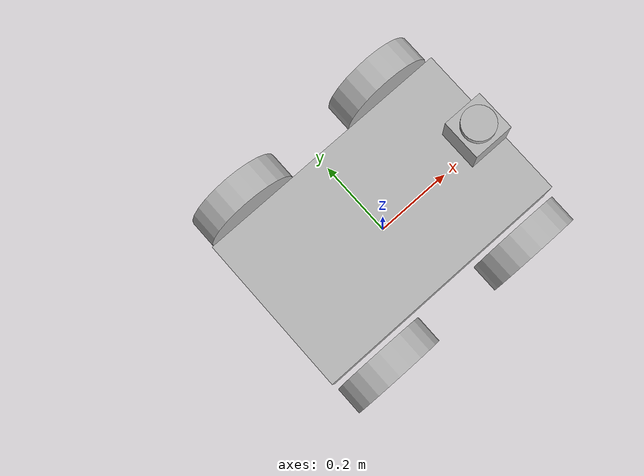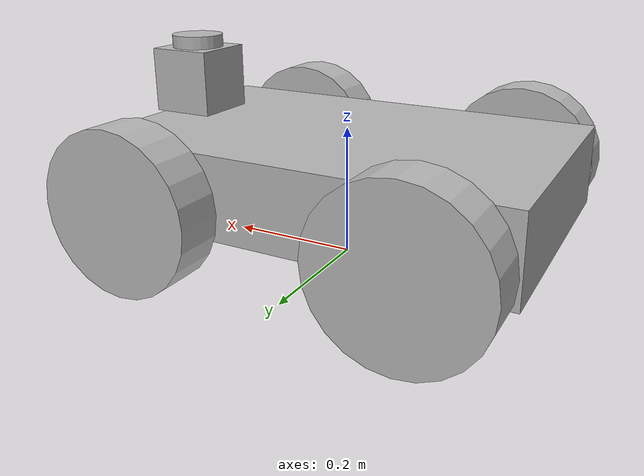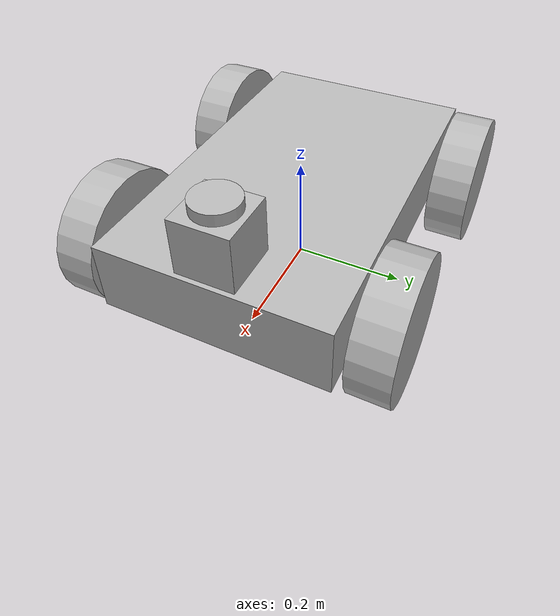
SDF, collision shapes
<sdf version='1.9'>
  <model name='avular_origin_one'>
    <link name='base_link'>
      <inertial>
        <pose>0.01401608312627061 2.688050598599503e-05 0.07370228145470974 0 0 0</pose>
        <mass>22.135000000000002</mass>
        <inertia>
          <ixx>0.44198759704088553</ixx>
          <ixy>-0.00017944243053986901</ixy>
          <ixz>-0.055551121987802127</ixz>
          <iyy>0.8924975819091937</iyy>
          <iyz>-5.1347142534447727e-05</iyz>
          <izz>1.093530182880506</izz>
        </inertia>
      </inertial>
      <collision name='base_link_fixed_joint_lump__collision_collision'>
        <pose>0 0 0.134 0 0 0</pose>
        <geometry>
          <box>
            <size>0.65 0.4 0.125</size>
          </box>
        </geometry>
      </collision>
      <collision name='base_link_fixed_joint_lump__collision-base_collision_1'>
        <pose>0.272 0 0.253 0 0 0</pose>
        <geometry>
          <box>
            <size>0.1 0.1 0.1</size>
          </box>
        </geometry>
      </collision>
      <collision name='base_link_fixed_joint_lump__collision-base_collision_2'>
        <pose>0.272 0 0.288 0 0 0</pose>
        <geometry>
          <cylinder>
            <length>0.070000000000000007</length>
            <radius>0.040000000000000001</radius>
          </cylinder>
        </geometry>
      </collision>
      <collision name='base_link_fixed_joint_lump__collision_collision_3'>
        <pose>0.3156 0.064 0.16 0 0 0</pose>
        <geometry>
          <box>
            <size>0.008 0.13 0.022</size>
          </box>
        </geometry>
      </collision>
      <visual name='base_link_fixed_joint_lump__visual_visual'>
        <pose>0 0 0.064 0 0 0</pose>
        <geometry>
          <mesh>
            <scale>0.001 0.001 0.001</scale>
            <uri>model://avular_origin_one/meshes/body.obj</uri>
          </mesh>
        </geometry>
      </visual>
      <visual name='base_link_fixed_joint_lump__visual_pole_visual_1'>
        <pose>-0.0505 0 0.276 0 0 0</pose>
        <geometry>
          <mesh>
            <scale>0.001 0.001 0.001</scale>
            <uri>model://avular_origin_one/meshes/antenna.obj</uri>
          </mesh>
        </geometry>
      </visual>
      <visual name='base_link_fixed_joint_lump__visual_visual_2'>
        <pose>0.272 0 0.253 0 0 0</pose>
        <geometry>
          <mesh>
            <scale>0.001 0.001 0.001</scale>
            <uri>model://avular_origin_one/meshes/ouster.obj</uri>
          </mesh>
        </geometry>
      </visual>
      <sensor name='navsat' type='navsat'>
        <always_on>true</always_on>
        <update_rate>10</update_rate>
        <topic>/robot/gnss</topic>
        <gps>
          <position_sensing>
            <horizontal>
              <noise type='gaussian'>
                <mean>0</mean>
                <stddev>0.0001</stddev>
              </noise>
            </horizontal>
            <vertical>
              <noise type='gaussian'>
                <mean>0</mean>
                <stddev>0.0001</stddev>
              </noise>
            </vertical>
          </position_sensing>
        </gps>
        <pose>-0.0505 0 0.276 0 -0 0</pose>
        <gz_frame_id>gnss_link</gz_frame_id>
      </sensor>
      <sensor name='ouster_lidar' type='gpu_lidar'>
        <topic>/robot/lidar</topic>
        <update_rate>10</update_rate>
        <lidar>
          <scan>
            <horizontal>
              <samples>1024</samples>
              <resolution>1</resolution>
              <min_angle>-3.1415926000000001</min_angle>
              <max_angle>3.1415926000000001</max_angle>
            </horizontal>
            <vertical>
              <samples>32</samples>
              <resolution>1</resolution>
              <min_angle>-0.39000000000000001</min_angle>
              <max_angle>0.39000000000000001</max_angle>
            </vertical>
          </scan>
          <range>
            <min>0.080000000000000002</min>
            <max>100</max>
            <resolution>0.01</resolution>
          </range>
          <noise>
            <mean>0</mean>
            <stddev>0.01</stddev>
            <type>gaussian</type>
          </noise>
        </lidar>
        <visualize>true</visualize>
        <pose>0.272 0 0.288 0 -0 0</pose>
        <gz_frame_id>os_lidar</gz_frame_id>
        <alwaysOn>1</alwaysOn>
      </sensor>
      <sensor name='realsense_d435' type='rgbd_camera'>
        <topic>/robot/camera</topic>
        <update_rate>6</update_rate>
        <camera name='camera'>
          <horizontal_fov>1.0471999999999999</horizontal_fov>
          <lens>
            <intrinsics>
              <fx>554.25468999999998</fx>
              <fy>554.25468999999998</fy>
              <cx>320.5</cx>
              <cy>240.5</cy>
              <s>0</s>
            </intrinsics>
            <type>stereographic</type>
            <scale_to_hfov>true</scale_to_hfov>
          </lens>
          <distortion>
            <k1>0</k1>
            <k2>0</k2>
            <k3>0</k3>
            <p1>0</p1>
            <p2>0</p2>
            <center>0.5 0.5</center>
          </distortion>
          <image>
            <width>640</width>
            <height>480</height>
            <format>R8G8B8</format>
          </image>
          <clip>
            <near>0.02</near>
            <far>300</far>
          </clip>
          <depth_camera>
            <clip>
              <near>0.10000000000000001</near>
              <far>10</far>
            </clip>
            <output>depths</output>
          </depth_camera>
          <noise>
            <mean>0</mean>
            <stddev>0.0070000000000000001</stddev>
            <type>gaussian</type>
          </noise>
        </camera>
        <pose>0.3156 0.017 0.16 0 -0 0</pose>
        <gz_frame_id>camera_link</gz_frame_id>
      </sensor>
    </link>
    <joint name='main_body_left_front_wheel' type='revolute'>
      <pose relative_to='base_link'>0.205 0.25 0.12 -1.5707 0 0</pose>
      <parent>base_link</parent>
      <child>left_front_wheel</child>
      <axis>
        <xyz>0 0 1</xyz>
        <limit>
          <effort>100000</effort>
          <velocity>10</velocity>
          <lower>-10000000000000000</lower>
          <upper>10000000000000000</upper>
        </limit>
        <dynamics>
          <spring_reference>0</spring_reference>
          <spring_stiffness>0</spring_stiffness>
        </dynamics>
      </axis>
    </joint>
    <link name='left_front_wheel'>
      <pose relative_to='main_body_left_front_wheel'>0 0 0 0 0 0</pose>
      <inertial>
        <pose>0 0 0 0 0 0</pose>
        <mass>1</mass>
        <inertia>
          <ixx>0.01</ixx>
          <ixy>0</ixy>
          <ixz>0</ixz>
          <iyy>0.01</iyy>
          <iyz>0</iyz>
          <izz>0.01</izz>
        </inertia>
      </inertial>
      <collision name='left_front_wheel_collision'>
        <pose>0 0 0 0 0 0</pose>
        <geometry>
          <cylinder>
            <length>0.070000000000000007</length>
            <radius>0.12</radius>
          </cylinder>
        </geometry>
        <surface>
          <friction>
            <ode>
              <mu>1</mu>
              <mu2>1</mu2>
              <slip1>0.014999999999999999</slip1>
              <slip2>0</slip2>
              <fdir1>0 0 1</fdir1>
            </ode>
            <bullet>
              <friction>1</friction>
              <friction2>1</friction2>
              <rolling_friction>0.10000000000000001</rolling_friction>
            </bullet>
          </friction>
          <contact>
            <ode/>
          </contact>
        </surface>
      </collision>
      <visual name='left_front_wheel_visual'>
        <pose>0 0 0 0 1.570796326794897 0</pose>
        <geometry>
          <mesh>
            <scale>0.001 0.001 0.001</scale>
            <uri>model://avular_origin_one/meshes/wheel.obj</uri>
          </mesh>
        </geometry>
      </visual>
    </link>
    <joint name='main_body_left_rear_wheel' type='revolute'>
      <pose relative_to='base_link'>-0.205 0.25 0.12 -1.5707 0 0</pose>
      <parent>base_link</parent>
      <child>left_rear_wheel</child>
      <axis>
        <xyz>0 0 1</xyz>
        <limit>
          <effort>100000</effort>
          <velocity>10</velocity>
          <lower>-10000000000000000</lower>
          <upper>10000000000000000</upper>
        </limit>
        <dynamics>
          <spring_reference>0</spring_reference>
          <spring_stiffness>0</spring_stiffness>
        </dynamics>
      </axis>
    </joint>
    <link name='left_rear_wheel'>
      <pose relative_to='main_body_left_rear_wheel'>0 0 0 0 0 0</pose>
      <inertial>
        <pose>0 0 0 0 0 0</pose>
        <mass>1</mass>
        <inertia>
          <ixx>0.01</ixx>
          <ixy>0</ixy>
          <ixz>0</ixz>
          <iyy>0.01</iyy>
          <iyz>0</iyz>
          <izz>0.01</izz>
        </inertia>
      </inertial>
      <collision name='left_rear_wheel_collision'>
        <pose>0 0 0 0 0 0</pose>
        <geometry>
          <cylinder>
            <length>0.070000000000000007</length>
            <radius>0.12</radius>
          </cylinder>
        </geometry>
        <surface>
          <friction>
            <ode>
              <mu>1</mu>
              <mu2>1</mu2>
              <slip1>0.014999999999999999</slip1>
              <slip2>0</slip2>
              <fdir1>0 0 1</fdir1>
            </ode>
            <bullet>
              <friction>1</friction>
              <friction2>1</friction2>
              <rolling_friction>0.10000000000000001</rolling_friction>
            </bullet>
          </friction>
          <contact>
            <ode/>
          </contact>
        </surface>
      </collision>
      <visual name='left_rear_wheel_visual'>
        <pose>0 0 0 0 1.570796326794897 0</pose>
        <geometry>
          <mesh>
            <scale>0.001 0.001 0.001</scale>
            <uri>model://avular_origin_one/meshes/wheel.obj</uri>
          </mesh>
        </geometry>
      </visual>
    </link>
    <joint name='main_body_right_front_wheel' type='revolute'>
      <pose relative_to='base_link'>0.205 -0.25 0.12 -1.5707 0 0</pose>
      <parent>base_link</parent>
      <child>right_front_wheel</child>
      <axis>
        <xyz>0 0 1</xyz>
        <limit>
          <effort>100000</effort>
          <velocity>10</velocity>
          <lower>-10000000000000000</lower>
          <upper>10000000000000000</upper>
        </limit>
        <dynamics>
          <spring_reference>0</spring_reference>
          <spring_stiffness>0</spring_stiffness>
        </dynamics>
      </axis>
    </joint>
    <link name='right_front_wheel'>
      <pose relative_to='main_body_right_front_wheel'>0 0 0 0 0 0</pose>
      <inertial>
        <pose>0 0 0 0 0 0</pose>
        <mass>1</mass>
        <inertia>
          <ixx>0.01</ixx>
          <ixy>0</ixy>
          <ixz>0</ixz>
          <iyy>0.01</iyy>
          <iyz>0</iyz>
          <izz>0.01</izz>
        </inertia>
      </inertial>
      <collision name='right_front_wheel_collision'>
        <pose>0 0 0 0 0 0</pose>
        <geometry>
          <cylinder>
            <length>0.070000000000000007</length>
            <radius>0.12</radius>
          </cylinder>
        </geometry>
        <surface>
          <friction>
            <ode>
              <mu>1</mu>
              <mu2>1</mu2>
              <slip1>0.014999999999999999</slip1>
              <slip2>0</slip2>
              <fdir1>0 0 1</fdir1>
            </ode>
            <bullet>
              <friction>1</friction>
              <friction2>1</friction2>
              <rolling_friction>0.10000000000000001</rolling_friction>
            </bullet>
          </friction>
          <contact>
            <ode/>
          </contact>
        </surface>
      </collision>
      <visual name='right_front_wheel_visual'>
        <pose>0 0 0 0 -1.570796326794897 0</pose>
        <geometry>
          <mesh>
            <scale>0.001 0.001 0.001</scale>
            <uri>model://avular_origin_one/meshes/wheel.obj</uri>
          </mesh>
        </geometry>
      </visual>
    </link>
    <joint name='main_body_right_rear_wheel' type='revolute'>
      <pose relative_to='base_link'>-0.205 -0.25 0.12 -1.5707 0 0</pose>
      <parent>base_link</parent>
      <child>right_rear_wheel</child>
      <axis>
        <xyz>0 0 1</xyz>
        <limit>
          <effort>100000</effort>
          <velocity>10</velocity>
          <lower>-10000000000000000</lower>
          <upper>10000000000000000</upper>
        </limit>
        <dynamics>
          <spring_reference>0</spring_reference>
          <spring_stiffness>0</spring_stiffness>
        </dynamics>
      </axis>
    </joint>
    <link name='right_rear_wheel'>
      <pose relative_to='main_body_right_rear_wheel'>0 0 0 0 0 0</pose>
      <inertial>
        <pose>0 0 0 0 0 0</pose>
        <mass>1</mass>
        <inertia>
          <ixx>0.01</ixx>
          <ixy>0</ixy>
          <ixz>0</ixz>
          <iyy>0.01</iyy>
          <iyz>0</iyz>
          <izz>0.01</izz>
        </inertia>
      </inertial>
      <collision name='right_rear_wheel_collision'>
        <pose>0 0 0 0 0 0</pose>
        <geometry>
          <cylinder>
            <length>0.070000000000000007</length>
            <radius>0.12</radius>
          </cylinder>
        </geometry>
        <surface>
          <friction>
            <ode>
              <mu>1</mu>
              <mu2>1</mu2>
              <slip1>0.014999999999999999</slip1>
              <slip2>0</slip2>
              <fdir1>0 0 1</fdir1>
            </ode>
            <bullet>
              <friction>1</friction>
              <friction2>1</friction2>
              <rolling_friction>0.10000000000000001</rolling_friction>
            </bullet>
          </friction>
          <contact>
            <ode/>
          </contact>
        </surface>
      </collision>
      <visual name='right_rear_wheel_visual'>
        <pose>0 0 0 0 -1.570796326794897 0</pose>
        <geometry>
          <mesh>
            <scale>0.001 0.001 0.001</scale>
            <uri>model://avular_origin_one/meshes/wheel.obj</uri>
          </mesh>
        </geometry>
      </visual>
    </link>
    <static>false</static>
    <plugin name='gz::sim::systems::Sensors' filename='gz-sim-sensors-system'>
      <render_engine>ogre2</render_engine>
    </plugin>
    <plugin name='ignition::gazebo::systems::NavSat' filename='ignition-gazebo-navsat-system'/>
    <plugin name='ignition::gazebo::systems::JointStatePublisher' filename='gz-sim-joint-state-publisher-system'>
      <topic>/robot/joint_states</topic>
    </plugin>
    <plugin name='gz::sim::systems::DiffDrive' filename='gz-sim-diff-drive-system'>
      <left_joint>main_body_left_front_wheel</left_joint>
      <left_joint>main_body_left_rear_wheel</left_joint>
      <right_joint>main_body_right_front_wheel</right_joint>
      <right_joint>main_body_right_rear_wheel</right_joint>
      <wheel_separation>0.45</wheel_separation>
      <wheel_radius>0.120</wheel_radius>
      <max_linear_acceleration>5.5</max_linear_acceleration>
      <min_linear_acceleration>-5.5</min_linear_acceleration>
      <max_angular_acceleration>6</max_angular_acceleration>
      <min_angular_acceleration>-6</min_angular_acceleration>
      <max_linear_velocity>1.5</max_linear_velocity>
      <min_linear_velocity>-1.5</min_linear_velocity>
      <max_angular_velocity>2</max_angular_velocity>
      <min_angular_velocity>-2</min_angular_velocity>
      <topic>/robot/cmd_vel</topic>
      <odom_topic>/robot/odom</odom_topic>
      <tf_topic>/robot/tf</tf_topic>
      <frame_id>odom</frame_id>
      <child_frame_id>base_link</child_frame_id>
    </plugin>
    <frame name='gnss_joint' attached_to='main_body'>
      <pose>-0.0505 0 0.212 0 -0 0</pose>
    </frame>
    <frame name='gnss_link' attached_to='gnss_joint'/>
    <frame name='imu_joint' attached_to='main_body'>
      <pose>-0.1266 0.0749 0.066 0 -0 2.357</pose>
    </frame>
    <frame name='imu_link' attached_to='imu_joint'/>
    <frame name='lidar_joint_gazebo' attached_to='ouster_base'>
      <pose>0 0 0.035 0 -0 0</pose>
    </frame>
    <frame name='lidar_link_gazebo' attached_to='lidar_joint_gazebo'/>
    <frame name='ouster_orientation_joint' attached_to='ouster_base'>
      <pose>0 0 0 0 -0 0</pose>
    </frame>
    <frame name='os_sensor' attached_to='ouster_orientation_joint'/>
    <frame name='ouster_platform_joint' attached_to='main_body'>
      <pose>0.272 0 0.189 0 -0 0</pose>
    </frame>
    <frame name='ouster_base' attached_to='ouster_platform_joint'/>
    <frame name='realsense_joint' attached_to='main_body'>
      <pose>0.3156 0.017 0.096 0 -0 0</pose>
    </frame>
    <frame name='camera_link' attached_to='realsense_joint'/>
    <frame name='us_center_front_joint' attached_to='main_body'>
      <pose>0.322 0 0.063 0 -0 0</pose>
    </frame>
    <frame name='us_center_front_link' attached_to='us_center_front_joint'/>
    <frame name='us_center_rear_joint' attached_to='main_body'>
      <pose>-0.322 0 0.063 0 -0 0</pose>
    </frame>
    <frame name='us_center_rear_link' attached_to='us_center_rear_joint'/>
    <frame name='us_left_front_joint' attached_to='main_body'>
      <pose>0.314 0.119 0.072 0 0 -0.7854</pose>
    </frame>
    <frame name='us_left_front_link' attached_to='us_left_front_joint'/>
    <frame name='us_left_rear_joint' attached_to='main_body'>
      <pose>-0.314 0.119 0.072 0 0 -2.357</pose>
    </frame>
    <frame name='us_left_rear_link' attached_to='us_left_rear_joint'/>
    <frame name='us_right_front_joint' attached_to='main_body'>
      <pose>0.314 -0.119 0.072 0 -0 0.7854</pose>
    </frame>
    <frame name='us_right_front_link' attached_to='us_right_front_joint'/>
    <frame name='us_right_rear_joint' attached_to='main_body'>
      <pose>-0.314 -0.119 0.072 0 -0 2.357</pose>
    </frame>
    <frame name='us_right_rear_link' attached_to='us_right_rear_joint'/>
    <frame name='base_body' attached_to='base_link'>
      <pose>0 0 0.064 0 -0 0</pose>
    </frame>
    <frame name='main_body' attached_to='base_body'/>
  </model>
</sdf>
